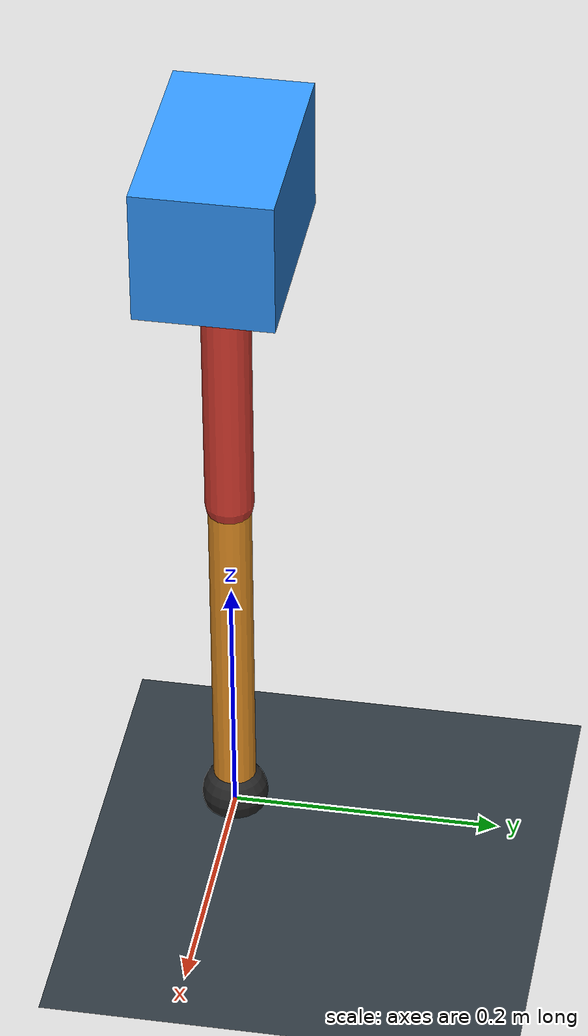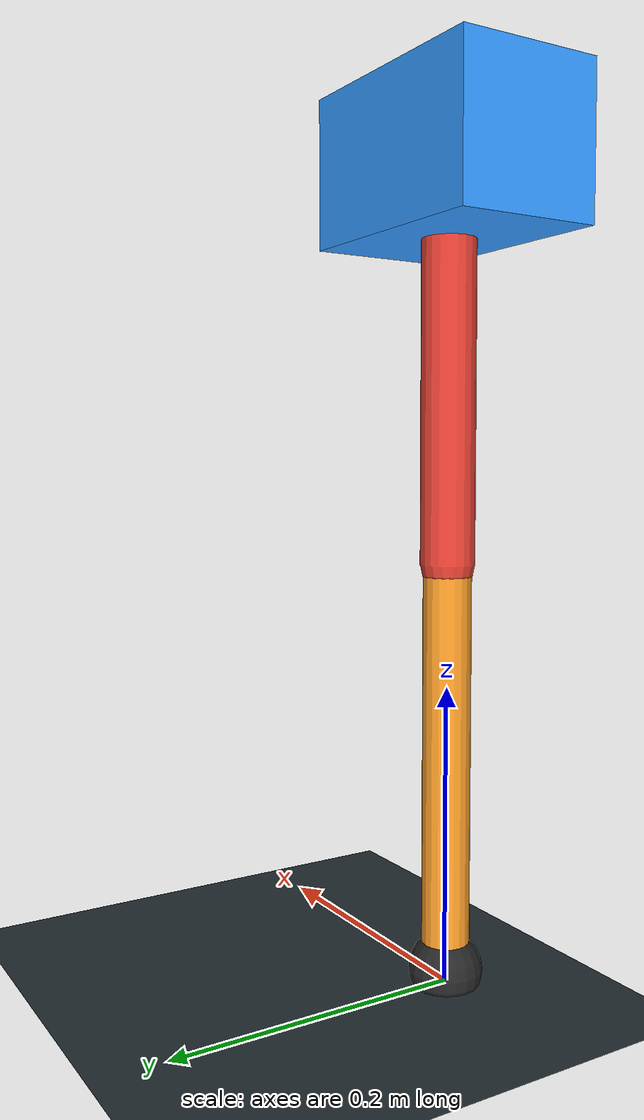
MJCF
<mujoco model="single_axis_two_bar">
  <compiler angle="radian" inertiafromgeom="true"/>
  <option timestep="0.001" integrator="implicitfast" gravity="0 0 -9.81"/>
  <default>
    <joint damping="0.08"/>
    <geom friction="1.2 0.01 0.0001" condim="3"/>
  </default>
  <worldbody>
    <geom name="floor" type="plane" size="5 5 0.1" rgba="0.18 0.22 0.25 1"/>
    <body name="carriage" pos="0 0 0.5423372023681987">
      <joint name="pole_slide" type="slide" axis="0 0 1"/>
      <geom name="payload" type="box" size="0.08 0.05 0.05" mass="2.237838390365996" rgba="0.2 0.6 1 1"/>
      <body name="thigh" pos="0 0 0">
        <joint name="hip" type="hinge" axis="0 1 0"/>
        <geom name="thigh_link" type="capsule" fromto="0 0 0 0 0 -0.26058281967735286" size="0.018" mass="0.1856687023182794" rgba="0.9 0.25 0.2 1"/>
        <body name="shank" pos="0 0 -0.26058281967735286">
          <joint name="knee" type="hinge" axis="0 1 0"/>
          <geom name="shank_link" type="capsule" fromto="0 0 0 0 0 -0.27275450235171794" size="0.016" mass="0.19434118705836087" rgba="0.95 0.6 0.15 1"/>
          <geom name="foot" type="sphere" pos="0 0 -0.27275450235171794" size="0.025" mass="0.03" rgba="0.15 0.15 0.15 1"/>
          <site name="toe" pos="0 0 -0.27275450235171794" size="0.008"/>
        </body>
      </body>
    </body>
  </worldbody>
  <actuator>
    <motor name="hip_motor" joint="hip" ctrlrange="-34.51230813907551 34.51230813907551"/>
    <motor name="knee_motor" joint="knee" ctrlrange="-36.2942595457143 36.2942595457143"/>
  </actuator>
</mujoco>
